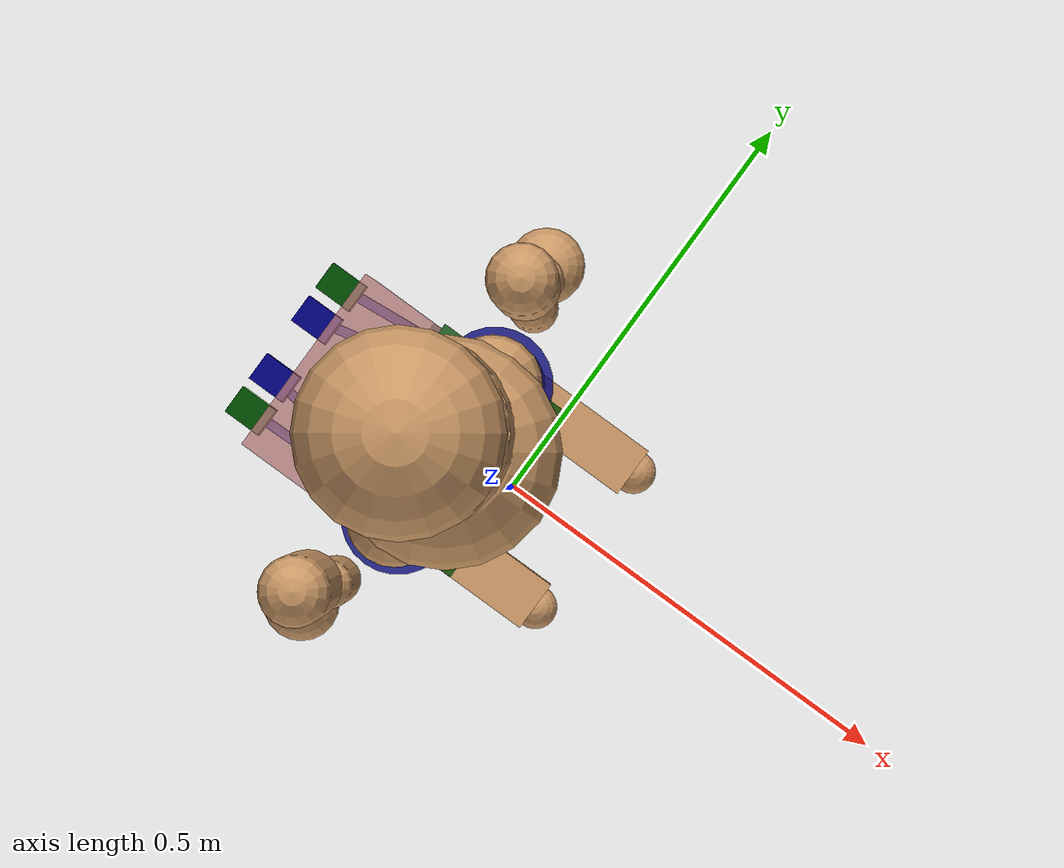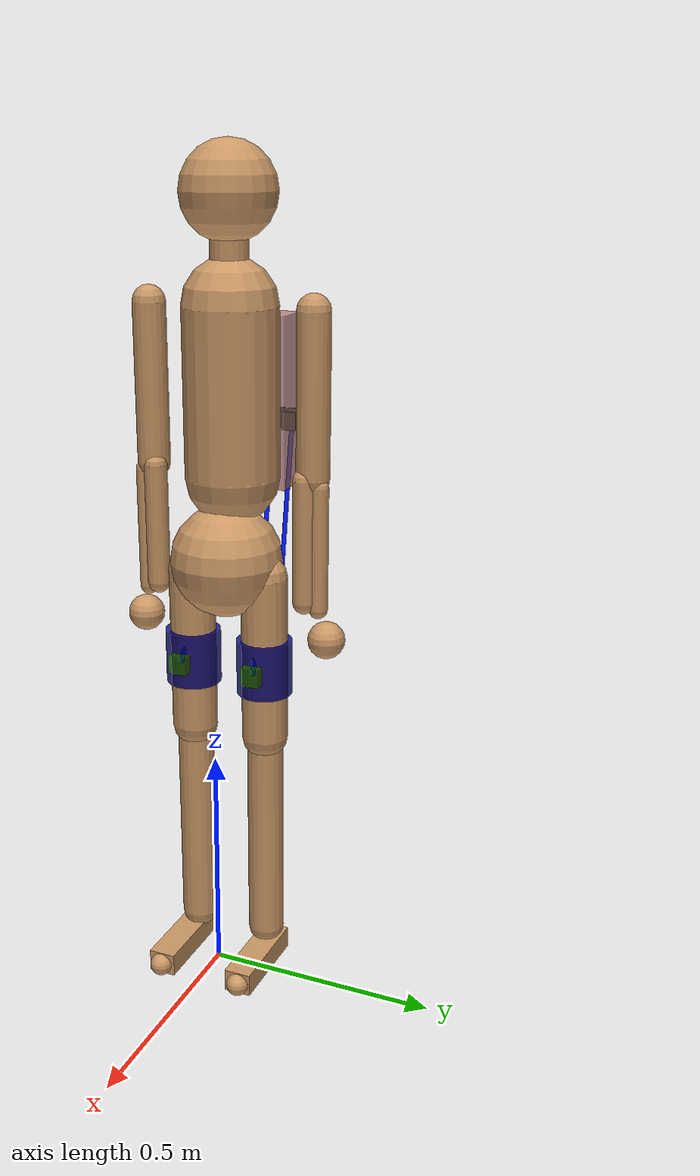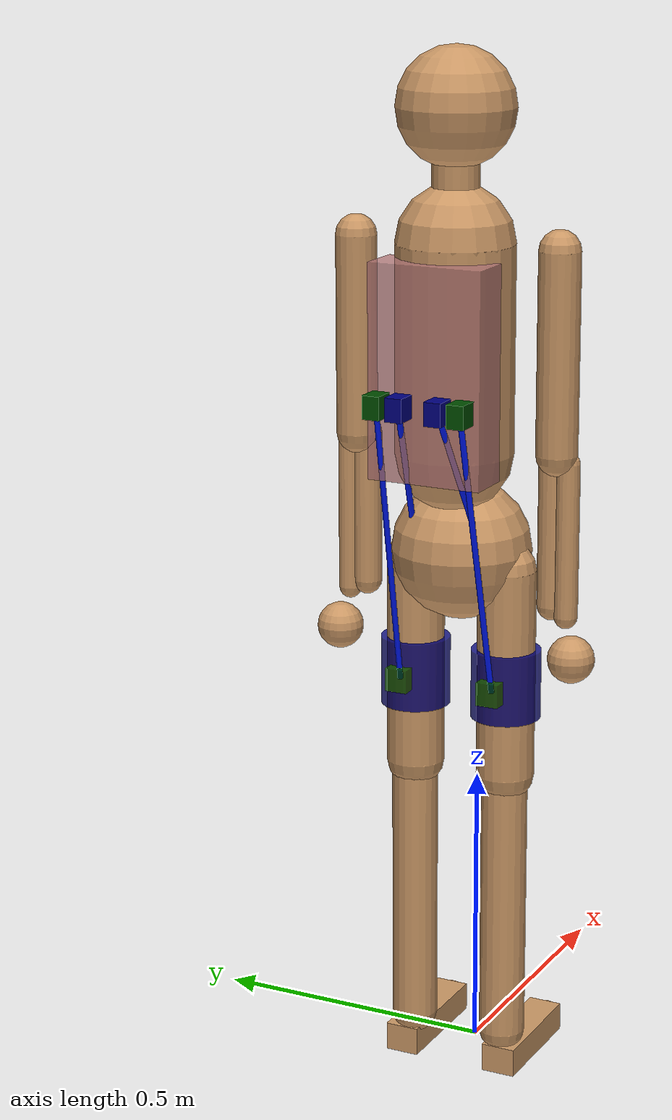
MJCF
<mujoco model="skeleton_torque_suit_muscle">
  <compiler angle="radian" inertiafromgeom="false" balanceinertia="true"
            boundmass="0.001" boundinertia="0.001"/>

  <default>
    <joint limited="true" damping="1.0" armature="0.01" stiffness="1.0"/>
    <geom rgba="0.8 0.6 0.4 1" condim="3"/>
    <motor ctrllimited="true" ctrlrange="-1.0 1.0"/>
  </default>

  <worldbody>
    <body name="pelvis" pos="0 0 0.975">
      <freejoint name="root"/>
      <inertial pos="-0.0721882 0 0" mass="13.5729922649758"
                fullinertia="0.123517 0.0695686 0.104653 0 0 0"/>
      <geom name="pelvis_col" type="sphere" size="0.12" pos="-0.07 0 -0.04" contype="1" conaffinity="1"/>

      <!-- Right leg -->
      <body name="femur_r" pos="-0.0721882 -0.0852576 -0.0674914">
        <joint name="hip_flexion_r"   damping="5" stiffness="10" type="hinge"
               pos="0 0 0" axis="0 -1 0" range="-0.787 0.787"/>
        <joint name="hip_adduction_r" damping="5" stiffness="10" type="hinge"
               pos="0 0 0" axis="1 0 0" range="-0.524 0.524"/>
        <joint name="hip_rotation_r"  damping="5" stiffness="20" type="hinge"
               pos="0 0 0" axis="0 0 1" range="-2.0944 2.0944"/>
        <inertial pos="0 0 -0.154514" mass="10.7198633143794"
                  fullinertia="0.127486 0.134436 0.0334185 0 0 0"/>
        <geom name="femur_r_col"   type="capsule" size="0.05" fromto="0 0 0 0 0 -0.365" contype="1" conaffinity="1"/>
        <geom name="right_hip_ring" type="cylinder" size="0.06 0.06" pos="0 0 -0.2" contype="1" conaffinity="1" rgba="0.0 0.0 0.5 0.8"/>

        <body name="tibia_r" pos="-0.00167398 0 -0.365545">
          <joint name="knee_angle_r" type="hinge" pos="0 0 0"
                 axis="0 -1 0" range="-2.0944 0.174533"/>
          <inertial pos="0 0 -0.208485" mass="4.27289367601238"
                    fullinertia="0.072432 0.073438 0.00732943 0 0 0"/>
          <geom name="tibia_r_col" type="capsule" size="0.04" fromto="0 0 0 0 0 -0.480" contype="1" conaffinity="1"/>

          <body name="talus_r" pos="0 0 -0.480173">
            <joint name="ankle_angle_r" stiffness="10" damping="1" type="hinge"
                   pos="0 0 0" axis="-0.105014 -0.979126 -0.174022"
                   range="-1.5708 1.5708"/>
            <inertial pos="0 0 0" mass="0.11524999800438"
                      fullinertia="0.00143714 0.00143714 0.00143714 0 0 0"/>
            <geom name="talus_r_col" type="sphere" size="0.035" contype="1" conaffinity="1"/>

            <body name="calcn_r" pos="-0.0544606 -0.00884412 -0.0468448">
              <joint name="subtalar_angle_r" type="hinge" pos="0 0 0"
                     axis="0.78718 0.120949 0.604747" range="-1.5708 1.5708"/>
              <inertial pos="0.106552 0 0.0319656" mass="1.44062497505475"
                        fullinertia="0.00183186 0.00536472 0.00510303 0 0 0"/>
              <geom name="calcn_r_col" type="box" size="0.105 0.03 0.025" pos="0.125 0 0.000" contype="1" conaffinity="1"/>

              <body name="toes_r" pos="0.190515 -0.00115076 -0.00213104">
                <joint name="mtp_angle_r" type="hinge" pos="0 0 0"
                       axis="-0.580954 -0.813936 0" range="-1.5708 1.5708"/>
                <inertial pos="0.036867 0.0186466 0.00639311" mass="0.249631495677486"
                          fullinertia="0.000130847 0.00130847 0.000261694 0 0 0"/>
                <geom name="toes_r_col" type="sphere" size="0.025" pos="0.04 0 0" contype="1" conaffinity="1"/>
              </body>
            </body>
          </body>
        </body>

        <!-- suit: right hip cable anchors -->
        <body name="RH_dump" pos="-0.06 0 -0.2">
          <inertial pos="0 0 0" mass="1.0" diaginertia="0.1 0.1 0.1"/>
          <geom name="RH_dump_col" type="box" size="0.02 0.02 0.02" contype="1" conaffinity="1" rgba="0.0 0.3 0.0 0.8"/>
          <site name="slider1_insertion" pos="0 0 0" size="0.001"/>
        </body>
        <body name="RH_dump2" pos="0.06 0 -0.2">
          <inertial pos="0 0 0" mass="1.0" diaginertia="0.1 0.1 0.1"/>
          <geom name="RH_dump2_col" type="box" size="0.02 0.02 0.02" contype="1" conaffinity="1" rgba="0.0 0.3 0.0 0.8"/>
          <site name="slider2_insertion" pos="0 0 0" size="0.001"/>
        </body>
      </body>

      <!-- Left leg -->
      <body name="femur_l" pos="-0.0721882 0.0852576 -0.0674914">
        <joint name="hip_flexion_l"   damping="5" stiffness="10" type="hinge"
               pos="0 0 0" axis="0 -1 0" range="-0.787 0.787"/>
        <joint name="hip_adduction_l" damping="5" stiffness="10" type="hinge"
               pos="0 0 0" axis="-1 0 0" range="-0.524 0.524"/>
        <joint name="hip_rotation_l"  damping="5" stiffness="20" type="hinge"
               pos="0 0 0" axis="0 0 -1" range="-2.0944 2.0944"/>
        <inertial pos="0 0 -0.154514" mass="10.7198633143794"
                  fullinertia="0.127486 0.134436 0.0334185 0 0 0"/>
        <geom name="femur_l_col"   type="capsule" size="0.05" fromto="0 0 0 0 0 -0.365" contype="1" conaffinity="1"/>
        <geom name="left_hip_ring" type="cylinder" size="0.06 0.06" pos="0 0 -0.2" contype="1" conaffinity="1" rgba="0.0 0.0 0.5 0.8"/>

        <body name="tibia_l" pos="-0.00167398 0 -0.365545">
          <joint name="knee_angle_l" type="hinge" pos="0 0 0"
                 axis="0 -1 0" range="-2.0944 0.174533"/>
          <inertial pos="0 0 -0.208485" mass="4.27289367601238"
                    fullinertia="0.072432 0.073438 0.00732943 0 0 0"/>
          <geom name="tibia_l_col" type="capsule" size="0.04" fromto="0 0 0 0 0 -0.480" contype="1" conaffinity="1"/>

          <body name="talus_l" pos="0 0 -0.480173">
            <joint name="ankle_angle_l" stiffness="10" damping="1" type="hinge"
                   pos="0 0 0" axis="0.105014 -0.979126 0.174022"
                   range="-1.0472 1.0472"/>
            <inertial pos="0 0 0" mass="0.11524999800438"
                      fullinertia="0.00143714 0.00143714 0.00143714 0 0 0"/>
            <geom name="talus_l_col" type="sphere" size="0.035" contype="1" conaffinity="1"/>

            <body name="calcn_l" pos="-0.0544606 0.00884412 -0.0468448">
              <joint name="subtalar_angle_l" type="hinge" pos="0 0 0"
                     axis="-0.78718 0.120949 -0.604747" range="-1.5708 1.5708"/>
              <inertial pos="0.106552 0 0.0319656" mass="1.44062497505475"
                        fullinertia="0.00183186 0.00536472 0.00510303 0 0 0"/>
              <geom name="calcn_l_col" type="box" size="0.105 0.03 0.025" pos="0.125 0 0.000" contype="1" conaffinity="1"/>

              <body name="toes_l" pos="0.190515 0.00115076 -0.00213104">
                <joint name="mtp_angle_l" type="hinge" pos="0 0 0"
                       axis="0.580954 -0.813936 0" range="-1.0472 1.0472"/>
                <inertial pos="0.036867 -0.0186466 0.00639311" mass="0.249631495677486"
                          fullinertia="0.000130847 0.00130847 0.000261694 0 0 0"/>
                <geom name="toes_l_col" type="sphere" size="0.025" pos="0.04 0 0" contype="1" conaffinity="1"/>
              </body>
            </body>
          </body>
        </body>

        <!-- suit: left hip cable anchors -->
        <body name="LH_dump" pos="-0.06 0 -0.2">
          <inertial pos="0 0 0" mass="1.0" diaginertia="0.1 0.1 0.1"/>
          <geom name="LH_dump_col" type="box" size="0.02 0.02 0.02" contype="1" conaffinity="1" rgba="0.0 0.3 0.0 0.8"/>
          <site name="slider3_insertion" pos="0 0 0" size="0.001"/>
        </body>
        <body name="LH_dump2" pos="0.06 0 -0.2">
          <inertial pos="0 0 0" mass="1.0" diaginertia="0.1 0.1 0.1"/>
          <geom name="LH_dump2_col" type="box" size="0.02 0.02 0.02" contype="1" conaffinity="1" rgba="0.0 0.3 0.0 0.8"/>
          <site name="slider4_insertion" pos="0 0 0" size="0.001"/>
        </body>
      </body>

      <!-- Torso -->
      <body name="torso" pos="-0.10282 0 0.0832155">
        <joint name="lumbar_extension" stiffness="10" damping="5" type="hinge"
               pos="0 0 0" axis="0 -1 0" range="-1.5708 0.377"/>
        <joint name="lumbar_bending"   stiffness="10" damping="5" type="hinge"
               pos="0 0 0" axis="1 0 0" range="-0.754 0.754"/>
        <joint name="lumbar_rotation"  stiffness="20" damping="5" type="hinge"
               pos="0 0 0" axis="0 0 1" range="-0.754 0.754"/>
        <inertial pos="-0.0323208 0 0.344755" mass="30.9176559646429"
                  fullinertia="1.97246 1.9148 1.01064 0 0 0"/>
        <geom name="torso_lower_col" type="capsule" size="0.10" fromto="0 0 0.05 0 0 0.40" contype="1" conaffinity="1"/>
        <geom name="torso_upper_col" type="capsule" size="0.04" fromto="0 0 0.40 0 0 0.53" contype="1" conaffinity="1"/>
        <geom name="head_col" type="sphere" size="0.10" pos="0 0 0.62" contype="1" conaffinity="1"/>
        <geom name="exo_main_col" type="box" size="0.04 0.1 0.18" pos="-0.08 0 0.2" contype="1" conaffinity="1" rgba="0.75 0.5 0.5 0.8"/>

        <!-- Right arm -->
        <body name="humerus_r" pos="0.00339907 -0.183151 0.400239">
          <joint name="arm_flex_r" type="hinge" pos="0 0 0"
                 axis="0 -1 0" range="-1.5708 1.5708"/>
          <joint name="arm_add_r"  type="hinge" pos="0 0 0"
                 axis="1 0 0" range="-2.0944 1.5708"/>
          <joint name="arm_rot_r"  type="hinge" pos="0 0 0"
                 axis="0 0 1" range="-1.5708 1.5708"/>
          <inertial pos="0 0 -0.193252" mass="2.34245620943902"
                    fullinertia="0.0190007 0.0213276 0.00655464 0 0 0"/>
          <geom name="humerus_r_col" type="capsule" size="0.035" fromto="0 0 0 0 0 -0.336" contype="1" conaffinity="1"/>

          <body name="ulna_r" pos="0.0154412 0.0112719 -0.336305">
            <joint name="elbow_flex_r" stiffness="0" type="hinge"
                   pos="0 0 0" axis="0.226047 -0.973862 0.022269"
                   range="0 2.618"/>
            <inertial pos="0 0 -0.133575" mass="0.700143737876607"
                      fullinertia="0.00419295 0.00454826 0.000874829 0 0 0"/>
            <geom name="ulna_r_col" type="capsule" size="0.025" fromto="0 0 0 0 0 -0.262" contype="1" conaffinity="1"/>

            <body name="radius_r" pos="-0.00745535 -0.0289071 -0.0144153">
              <joint name="pro_sup_r" stiffness="0" type="hinge"
                     pos="0 0 0" axis="0.056398 -0.001952 0.998406"
                     range="0 1.5708"/>
              <inertial pos="0 0 -0.133575" mass="0.700143737876607"
                        fullinertia="0.00419295 0.00454826 0.000874829 0 0 0"/>
              <geom name="radius_r_col" type="capsule" size="0.02" fromto="0 0 0 0 0 -0.262" contype="1" conaffinity="1"/>

              <body name="hand_r" pos="-0.00974948 -0.0150836 -0.261376">
                <inertial pos="0 0 -0.0725565" mass="0.527268740870037"
                          fullinertia="0.00116715 0.00175335 0.000715732 0 0 0"/>
                <geom name="hand_r_col" type="sphere" size="0.04" pos="0 0 -0.07" contype="1" conaffinity="1"/>
              </body>
            </body>
          </body>
        </body>

        <!-- Left arm -->
        <body name="humerus_l" pos="0.00339907 0.183151 0.400239">
          <joint name="arm_flex_l" type="hinge" pos="0 0 0"
                 axis="0 -1 0" range="-1.5708 1.5708"/>
          <joint name="arm_add_l"  type="hinge" pos="0 0 0"
                 axis="-1 0 0" range="-2.0944 1.5708"/>
          <joint name="arm_rot_l"  type="hinge" pos="0 0 0"
                 axis="0 0 -1" range="-1.5708 1.5708"/>
          <inertial pos="0 0 -0.193252" mass="2.34245620943902"
                    fullinertia="0.0190007 0.0213276 0.00655464 0 0 0"/>
          <geom name="humerus_l_col" type="capsule" size="0.035" fromto="0 0 0 0 0 -0.336" contype="1" conaffinity="1"/>

          <body name="ulna_l" pos="0.0154412 -0.0112719 -0.336305">
            <joint name="elbow_flex_l" stiffness="0" type="hinge"
                   pos="0 0 0" axis="-0.226047 -0.973862 -0.022269"
                   range="0 2.618"/>
            <inertial pos="0 0 -0.133575" mass="0.700143737876607"
                      fullinertia="0.00419295 0.00454826 0.000874829 0 0 0"/>
            <geom name="ulna_l_col" type="capsule" size="0.025" fromto="0 0 0 0 0 -0.262" contype="1" conaffinity="1"/>

            <body name="radius_l" pos="-0.00745535 0.0289071 -0.0144153">
              <joint name="pro_sup_l" stiffness="0" type="hinge"
                     pos="0 0 0" axis="-0.056398 -0.001952 -0.998406"
                     range="0 1.5708"/>
              <inertial pos="0 0 -0.133575" mass="0.700143737876607"
                        fullinertia="0.00419295 0.00454826 0.000874829 0 0 0"/>
              <geom name="radius_l_col" type="capsule" size="0.02" fromto="0 0 0 0 0 -0.262" contype="1" conaffinity="1"/>

              <body name="hand_l" pos="-0.00974948 0.0150836 -0.261376">
                <inertial pos="0 0 -0.0725565" mass="0.527268740870037"
                          fullinertia="0.00116715 0.00175335 0.000715732 0 0 0"/>
                <geom name="hand_l_col" type="sphere" size="0.04" pos="0 0 -0.07" contype="1" conaffinity="1"/>
              </body>
            </body>
          </body>
        </body>

        <!-- suit: cable slider actuators -->
        <body name="slider1" pos="-0.14 -0.075 0.15">
          <joint name="slide1" type="slide" pos="0 0 0" axis="0 0 1"
                 range="-0.15 0.15" damping="0.1"/>
          <inertial pos="0 0 0" mass="0.01" diaginertia="0.01 0.01 0.01"/>
          <geom name="slider1_col" type="box" size="0.02 0.015 0.02" contype="1" conaffinity="1" rgba="0.0 0.3 0.0 1.0"/>
          <site name="slider1_origin" pos="0 0 0" size="0.001"/>
        </body>
        <body name="slider2" pos="-0.14 -0.035 0.15">
          <joint name="slide2" type="slide" pos="0 0 0" axis="0 0 1"
                 range="-0.15 0.15" damping="0.1"/>
          <inertial pos="0 0 0" mass="0.01" diaginertia="0.01 0.01 0.01"/>
          <geom name="slider2_col" type="box" size="0.02 0.015 0.02" contype="1" conaffinity="1" rgba="0.0 0.0 0.5 1.0"/>
          <site name="slider2_origin" pos="0 0 0" size="0.001"/>
        </body>
        <body name="slider3" pos="-0.14 0.075 0.15">
          <joint name="slide3" type="slide" pos="0 0 0" axis="0 0 1"
                 range="-0.15 0.15" damping="0.1"/>
          <inertial pos="0 0 0" mass="0.01" diaginertia="0.01 0.01 0.01"/>
          <geom name="slider3_col" type="box" size="0.02 0.015 0.02" contype="1" conaffinity="1" rgba="0.0 0.3 0.0 1.0"/>
          <site name="slider3_origin" pos="0 0 0" size="0.001"/>
        </body>
        <body name="slider4" pos="-0.14 0.035 0.15">
          <joint name="slide4" type="slide" pos="0 0 0" axis="0 0 1"
                 range="-0.15 0.15" damping="0.1"/>
          <inertial pos="0 0 0" mass="0.01" diaginertia="0.01 0.01 0.01"/>
          <geom name="slider4_col" type="box" size="0.02 0.015 0.02" contype="1" conaffinity="1" rgba="0.0 0.0 0.5 1.0"/>
          <site name="slider4_origin" pos="0 0 0" size="0.001"/>
        </body>
      </body>
    </body>
  </worldbody>

  <tendon>
    <spatial name="cable1" limited="true" range="0 0.51" rgba="0 0.1 1 1" width="0.005">
      <site site="slider1_origin"/>
      <site site="slider1_insertion"/>
    </spatial>
    <spatial name="cable2" limited="true" range="0 0.51" rgba="0 0.1 1 1" width="0.005">
      <site site="slider2_origin"/>
      <site site="slider2_insertion"/>
    </spatial>
    <spatial name="cable3" limited="true" range="0 0.51" rgba="0 0.1 1 1" width="0.005">
      <site site="slider3_origin"/>
      <site site="slider3_insertion"/>
    </spatial>
    <spatial name="cable4" limited="true" range="0 0.51" rgba="0 0.1 1 1" width="0.005">
      <site site="slider4_origin"/>
      <site site="slider4_insertion"/>
    </spatial>
  </tendon>

  <equality>
    <joint name="subtalar_angle_r_constraint" active="true" joint1="subtalar_angle_r" polycoef="0 0 0 0 0"/>
    <joint name="mtp_angle_r_constraint"      active="true" joint1="mtp_angle_r"      polycoef="0 0 0 0 0"/>
    <joint name="subtalar_angle_l_constraint" active="true" joint1="subtalar_angle_l" polycoef="0 0 0 0 0"/>
    <joint name="mtp_angle_l_constraint"      active="true" joint1="mtp_angle_l"      polycoef="0 0 0 0 0"/>
  </equality>

  <actuator>
    <motor name="mot_hip_flexion_r"   gear="275" joint="hip_flexion_r"/>
    <motor name="mot_hip_adduction_r" gear="530" joint="hip_adduction_r"/>
    <motor name="mot_hip_rotation_r"  gear="600" joint="hip_rotation_r"/>
    <motor name="mot_knee_angle_r"    gear="600" joint="knee_angle_r"/>
    <motor name="mot_ankle_angle_r"   gear="500" joint="ankle_angle_r"/>
    <motor name="mot_subtalar_r"      gear="50"  joint="subtalar_angle_r"/>
    <motor name="mot_mtp_r"           gear="50"  joint="mtp_angle_r"/>
    <motor name="mot_hip_flexion_l"   gear="275" joint="hip_flexion_l"/>
    <motor name="mot_hip_adduction_l" gear="530" joint="hip_adduction_l"/>
    <motor name="mot_hip_rotation_l"  gear="600" joint="hip_rotation_l"/>
    <motor name="mot_knee_angle_l"    gear="600" joint="knee_angle_l"/>
    <motor name="mot_ankle_angle_l"   gear="500" joint="ankle_angle_l"/>
    <motor name="mot_subtalar_l"      gear="50"  joint="subtalar_angle_l"/>
    <motor name="mot_mtp_l"           gear="50"  joint="mtp_angle_l"/>
    <motor name="mot_lumbar_ext"      gear="160" joint="lumbar_extension"/>
    <motor name="mot_lumbar_bend"     gear="160" joint="lumbar_bending"/>
    <motor name="mot_lumbar_rot"      gear="100" joint="lumbar_rotation"/>
    <motor name="mot_shoulder_flex_r" gear="250" joint="arm_flex_r"/>
    <motor name="mot_shoulder_add_r"  gear="250" joint="arm_add_r"/>
    <motor name="mot_shoulder_rot_r"  gear="250" joint="arm_rot_r"/>
    <motor name="mot_elbow_flex_r"    gear="250" joint="elbow_flex_r"/>
    <motor name="mot_pro_sup_r"       gear="250" joint="pro_sup_r"/>
    <motor name="mot_shoulder_flex_l" gear="250" joint="arm_flex_l"/>
    <motor name="mot_shoulder_add_l"  gear="250" joint="arm_add_l"/>
    <motor name="mot_shoulder_rot_l"  gear="250" joint="arm_rot_l"/>
    <motor name="mot_elbow_flex_l"    gear="250" joint="elbow_flex_l"/>
    <motor name="mot_pro_sup_l"       gear="250" joint="pro_sup_l"/>
    <motor name="cable1" gear="500" joint="slide1" ctrlrange="-2 2"/>
    <motor name="cable2" gear="500" joint="slide2" ctrlrange="-2 2"/>
    <motor name="cable3" gear="500" joint="slide3" ctrlrange="-2 2"/>
    <motor name="cable4" gear="500" joint="slide4" ctrlrange="-2 2"/>
  </actuator>
</mujoco>
